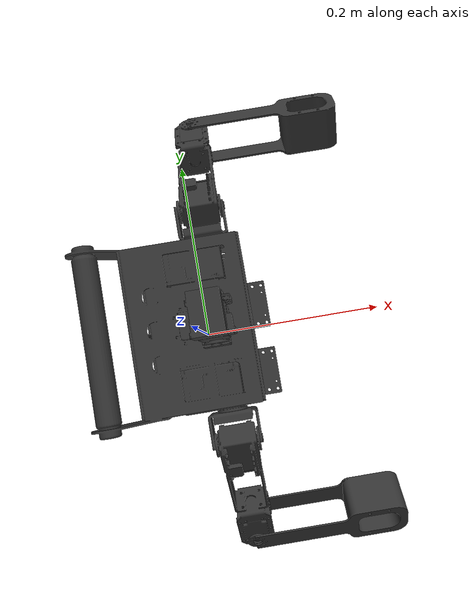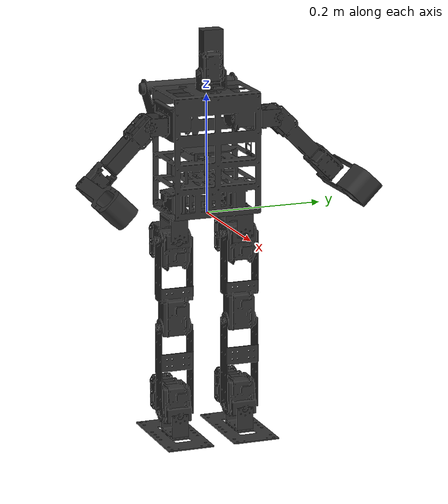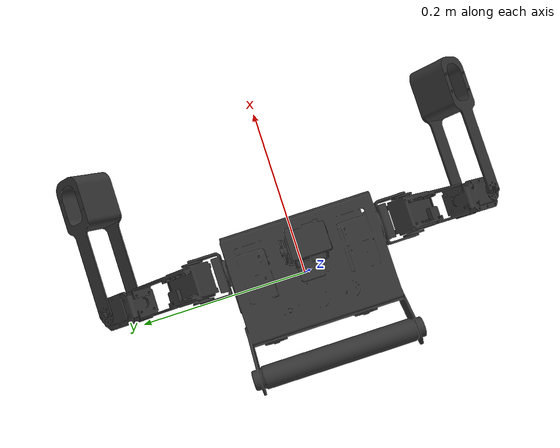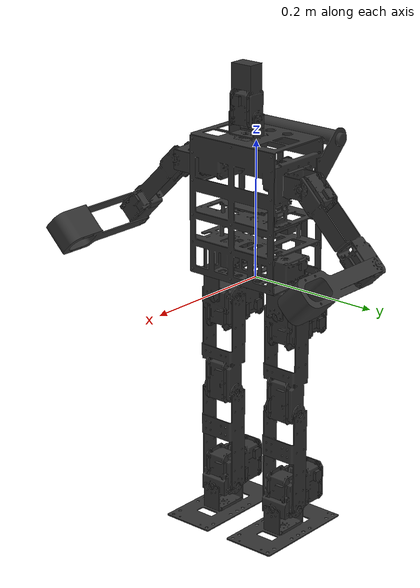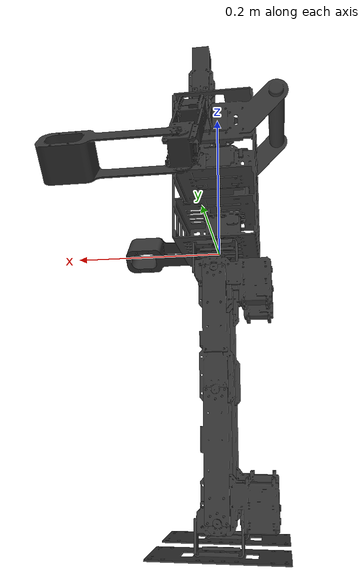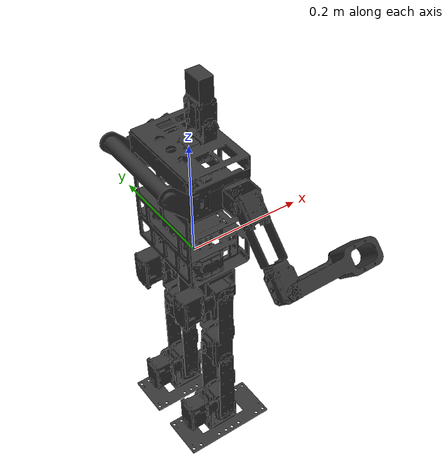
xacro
<?xml version="1.0" ?>
<robot name="Minibot" xmlns:xacro="http://www.ros.org/wiki/xacro">

<xacro:arg name="sim_ns" default="/" />
<xacro:property name="tofa" value="1" /> <!--Torque factor-->
<xacro:property name="infa" value="1" /> <!--inertia factor-->
<xacro:property name="insu" value="0" /> <!--inertia summand-->
<xacro:property name="d" value="0.000001" /> <!-- damping -->
<xacro:property name="f" value="0" /> <!-- friction -->
<xacro:property name="pos_or_eff" value="1" /> <!-- position (0) or effort(1) joint interfaces -->

  <link name="base_link">
  </link>

  <link name="torso">
    <inertial>
      <origin xyz="-0.025019 0.000832 -0.054364" rpy=" 1.5707963268 0 1.5707963268"/>
      <mass value="1.423"/>
      <inertia ixx="${insu*10+infa* 0.009125471}"  ixy="0.0"  ixz="0" iyy="${insu*10+infa*0.005276569}" iyz="0.0" izz="${insu*10+infa*0.010426914}" />
    </inertial>
    <visual>
      <origin xyz="0 0 0" rpy="1.5707963268 0 1.5707963268"/>
      <geometry>
        <mesh filename="package://minibot_description/meshes/torso_low.dae"  scale="1 1 1"/>
      </geometry>
      <material name="Grey">
        <color rgba="0.20 0.20 0.20 1.0"/>
      </material>
    </visual>
    <collision>
      <origin xyz="0 0 0" rpy="1.5707963268 0 1.5707963268"/>
      <geometry>
        <mesh filename="package://minibot_description/meshes/torso_coll.dae"  scale="1 1 1"/>
      </geometry>
    </collision>
  </link>

  <link name="neck">
    <inertial>
      <origin xyz="0.000002 -0.001022 0.008994"/>
            <mass value="0.1"/>
      <inertia ixx="${insu*0.1+infa*0.000001769}"  ixy="0.0"  ixz="0" iyy="${insu*0.1+infa*0.000004625}" iyz="0.0" izz="${insu*0.1+infa*0.000005125}" />
    </inertial>
    <visual>
      <origin xyz="0 0 0" rpy="1.5707963268 0 0" />
      <geometry>
        <mesh filename="package://minibot_description/meshes/head_lower_high.stl"  scale="1 1 1"/>
      </geometry>
      <material name="Grey">
        <color rgba="0.20 0.20 0.20 1.0"/>
      </material>
    </visual>
    <collision>
      <origin xyz="0 0 0" rpy="1.5707963268 0 0" />
      <geometry>
        <mesh filename="package://minibot_description/meshes/head_lower_coll.dae"  scale="1 1 1"/>
      </geometry>
    </collision>
  </link>

  <link name="head">
    <inertial>
      <origin xyz="-0.000223 -0.028433 0.0" rpy="0 1.5707963268 0"/>
      <mass value="0.1"/>
      <inertia ixx="${insu*0.1+infa*0.000097954}"  ixy="0"  ixz="0" iyy="${insu*0.1+infa*0.000025415}" iyz="0" izz="${insu*0.1+infa*0.000107764}" />
    </inertial>
    <visual>
      <origin xyz="0 0 0" rpy="3.14 1.5707963268 0" />
      <geometry>
        <mesh filename="package://minibot_description/meshes/head_upper_high.stl"  scale="1 1 1"/>
      </geometry>
      <material name="Grey">
        <color rgba="0.20 0.20 0.20 1.0"/>
      </material>
    </visual>
    <collision>
      <origin xyz="0 0 0" rpy="3.14 1.5707963268 0" />
      <geometry>
        <mesh filename="package://minibot_description/meshes/head_upper_coll.dae"  scale="1 1 1"/>
      </geometry>
    </collision>
  </link>

  <link name="l_shoulder">
    <inertial>
      <origin xyz="0.0 0.0 0.0087"/>
      <mass value="0.018"/>
      <inertia ixx="${insu*0.1+infa*0.000006948}"  ixy="0"  ixz="0" iyy="${insu*0.1+infa*0.000007574}" iyz="0" izz="${insu*0.1+infa*0.000003585}" />
    </inertial>
    <visual>
      <origin xyz="0 0 0" rpy="0 1.5707963268 1.5707963268"/>
      <geometry>
        <!--box size="0.016 0.033 0.02165" /-->
        <mesh filename="package://minibot_description/meshes/shoulder_con_high.stl"  scale="1 1 1"/>
      </geometry>
      <material name="Grey">
        <color rgba="0.20 0.20 0.20 1.0"/>
      </material>
    </visual>
    <collision>
      <origin xyz="0 0 0" rpy="0 1.5707963268 1.5707963268"/>
      <geometry>
        <mesh filename="package://minibot_description/meshes/shoulder_con_coll.dae"  scale="1 1 1"/>
      </geometry>
    </collision>
  </link>

  <link name="l_upper_arm" >
    <inertial>
      <origin xyz="-0.071053 0.000432 0.000046"/>
      <mass value="0.190"/>
      <inertia ixx="${insu+infa*0.0000409}"  ixy="0"  ixz="0" iyy="${insu+infa*0.000667366}" iyz="0" izz="${insu+infa*0.000664711}" />
    </inertial>
    <visual>
      <origin xyz="0 0 0" rpy="0 0 -1.5707963268" />
      <geometry>
        <mesh filename="package://minibot_description/meshes/upper_arm_high.dae"  scale="1 1 1"/>
      </geometry>
      <material name="Grey">
        <color rgba="0.20 0.20 0.20 1.0"/>
      </material>
    </visual>
   <collision>
      <origin xyz="0 0 0" rpy="0 0 -1.5707963268" />
      <geometry>
        <mesh filename="package://minibot_description/meshes/upper_arm_coll.dae"  scale="1 1 1"/>
      </geometry>
    </collision>
  </link>

  <link name="l_lower_arm" >
    <inertial>
      <origin xyz="-0.108 0.0 0.0" rpy="0 0 -3.141"/>
      <mass value="0.097"/>
      <inertia ixx="${insu*0.1+infa*0.00004315}"  ixy="0"  ixz="0" iyy="${insu*0.1+infa*0.000170889}" iyz="0" izz="${insu*0.1+infa*0.000179088}" />
    </inertial>

    <visual>
      <origin xyz="0 0 0" rpy="0 1.5707963268 -1.5707963268" />
      <geometry>
        <mesh filename="package://minibot_description/meshes/lower_arm_high.stl"  scale="1 1 1"/>
      </geometry>
      <material name="Grey">
        <color rgba="0.20 0.20 0.20 1.0"/>
      </material>
    </visual>
    <collision>
      <origin xyz="0 0 0" rpy="0 1.5707963268 -1.5707963268" />
      <geometry>
        <mesh filename="package://minibot_description/meshes/lower_arm_coll.dae"  scale="1 1 1"/>
      </geometry>
    </collision>
  </link>

  <link name="r_shoulder" >
    <inertial>
      <origin xyz="0.0 0.0 0.0087"/>
      <mass value="0.018"/>
      <inertia ixx="${insu*0.1+infa*0.000006948}"  ixy="0"  ixz="0" iyy="${insu*0.1+infa*0.000007574}" iyz="0" izz="${insu*0.1+infa*0.000003585}" />
    </inertial>
    <visual>
      <origin xyz="0 0 0" rpy="0 1.5707963268 1.5707963268"/>
      <geometry>
        <!--box size="0.016 0.033 0.02165" /-->
        <mesh filename="package://minibot_description/meshes/shoulder_con_high.stl"  scale="1 1 1"/>
      </geometry>
      <material name="Grey">
        <color rgba="0.20 0.20 0.20 1.0"/>
      </material>
    </visual>
    <collision>
      <origin xyz="0 0 0" rpy="0 1.5707963268 1.5707963268"/>
      <geometry>
        <mesh filename="package://minibot_description/meshes/shoulder_con_coll.dae"  scale="1 1 1"/>
      </geometry>
    </collision>
  </link>

  <link name="r_upper_arm" >
    <inertial>
      <origin xyz="-0.071053 0.000432 0.000046"/>
      <mass value="0.190"/>
      <inertia ixx="${insu*0.1+infa*0.0000409}"  ixy="0"  ixz="0" iyy="${insu*0.1+infa*0.000667366}" iyz="0" izz="${insu*0.1+infa*0.000664711}" />
    </inertial>
    <visual>
      <origin xyz="0 0 0" rpy="0 0 -1.5707963268" />
      <geometry>
        <!--box size="0.06 0.032 0.035"/-->
        <mesh filename="package://minibot_description/meshes/upper_arm_high.dae"  scale="1 1 1"/>
      </geometry>
      <material name="Grey">
        <color rgba="0.20 0.20 0.20 1.0"/>
      </material>
    </visual>
    <collision>
      <origin xyz="0 0 0" rpy="0 0 -1.5707963268" />
      <geometry>
        <mesh filename="package://minibot_description/meshes/upper_arm_coll.dae"  scale="1 1 1"/>
      </geometry>
    </collision>
  </link>

  <link name="r_lower_arm" >
    <inertial>
      <origin xyz="0.108 0.0 0.0"/>
      <mass value="0.097"/>
      <inertia ixx="${insu*0.1+infa*0.00004315}"  ixy="0"  ixz="0" iyy="${insu*0.1+infa*0.000170889}" iyz="0" izz="${insu*0.1+infa*0.000179088}" />
    </inertial>

    <visual>
      <origin xyz="0 0 0" rpy="0 1.5707963268 1.5707963268" />
      <geometry>
        <mesh filename="package://minibot_description/meshes/lower_arm_high.stl"  scale="1 1 1"/>
      </geometry>
      <material name="Grey">
        <color rgba="0.20 0.20 0.20 1.0"/>
      </material>
    </visual>
    <collision>
      <origin xyz="0 0 0" rpy="0 1.5707963268 1.5707963268" />
      <geometry>
        <mesh filename="package://minibot_description/meshes/lower_arm_coll.dae"  scale="1 1 1"/>
      </geometry>
    </collision>
  </link>

  <link name="l_hip_1" >
    <inertial>
      <origin xyz="0.0 0.0 0.011" rpy="1.5707963268 0 1.5707963268"/>
      <mass value="0.022"/>
      <inertia ixx="${insu*0.1+infa*0.000014143}"  ixy="0"  ixz="0" iyy="${insu*0.1+infa*0.000013017}" iyz="0" izz="${insu*0.1+infa*0.0000052}" />
    </inertial>
    <visual>
      <origin xyz="0 0 0" rpy="1.5707963268 0 0" />
      <geometry>
        <!--box size="0.045 0.08175 0.028652" /-->
        <mesh filename="package://minibot_description/meshes/yaw_con_high.stl"  scale="1 1 1"/>
      </geometry>
      <material name="Grey">
        <color rgba="0.20 0.20 0.20 1.0"/>
      </material>
    </visual>
    <collision>
      <origin xyz="0 0 0" rpy="1.5707963268 0 0" />
      <geometry>
        <mesh filename="package://minibot_description/meshes/yaw_con_coll.dae"  scale="1 1 1"/>
      </geometry>
    </collision>
  </link>

  <link name="l_hip_2" >
    <inertial>
      <origin xyz="-0.00057 -0.013721 0.02013 "/>
      <mass value="0.325"/>
      <inertia ixx="${insu+infa*0.000315619}"  ixy="0"  ixz="0" iyy="${insu+infa*0.000280296}" iyz="0" izz="${insu+infa*0.0001431}" />
    </inertial>
    <visual>
      <origin xyz="0 0 0" rpy="0 3.14 0" />
      <geometry>
        <!--box size="0.001 0.001 0.001"/-->
        <mesh filename="package://minibot_description/meshes/hip_roll_low.dae"  scale="1 1 1"/>
      </geometry>
      <material name="Grey">
        <color rgba="0.20 0.20 0.20 1.0"/>
      </material>
    </visual>
    <collision>
      <origin xyz="0 0 0" rpy="0 3.14 0" />
      <geometry>
        <mesh filename="package://minibot_description/meshes/hip_roll_coll.dae"  scale="1 1 1"/>
      </geometry>
    </collision>
  </link>

  <link name="l_upper_leg" >
    <inertial>
      <origin xyz="-0.12799 -0.000699 0.000454" rpy="0 1.5707963268 1.5707963268"/>
      <mass value="0.215"/>
      <inertia ixx="${insu+infa*0.000295153}"  ixy="0"  ixz="0" iyy="${insu+infa*0.000085463}" iyz="0" izz="${insu+infa*0.000344449}" />
    </inertial>
    <visual>
      <origin xyz="0 0 0" rpy="1.5707963268 1.5707963268 0" />
      <geometry>
        <!--box size="0.093 0.035 0.045"-->
        <mesh filename="package://minibot_description/meshes/upper_leg_high.stl"  scale="1 1 1"/>
      </geometry>
      <material name="Grey">
        <color rgba="0.20 0.20 0.20 1.0"/>
      </material>
    </visual>
    <collision>
      <origin xyz="0 0 0" rpy="1.5707963268 1.5707963268 0" />
      <geometry>
        <mesh filename="package://minibot_description/meshes/upper_leg_coll.dae"  scale="1 1 1"/>
      </geometry>
    </collision>
  </link>

  <link name="l_lower_leg" >
    <inertial>
      <origin xyz="-0.072079 -0.00295 0.0" rpy="0 1.5707963268 1.5707963268"/>
      <mass value="0.055"/>
      <inertia ixx="${insu*0.1+infa*0.000094062}"  ixy="0"  ixz="0" iyy="${insu*0.1+infa*0.000043139}" iyz="0" izz="${insu*0.1+infa*0.000125827}" />
    </inertial>
    <visual>
      <origin xyz="0 0 0" rpy="1.5707963268 1.5707963268 0" />
      <geometry>
        <!--box size="0.093 0.035 0.045"/-->
        <mesh filename="package://minibot_description/meshes/lower_leg_high.stl"  scale="1 1 1"/>
      </geometry>
      <material name="Grey">
        <color rgba="0.20 0.20 0.20 1.0"/>
      </material>
    </visual>
    <collision>
      <origin xyz="0 0 0" rpy="1.5707963268 1.5707963268 0" />
      <geometry>
        <mesh filename="package://minibot_description/meshes/lower_leg_coll.dae"  scale="1 1 1"/>
      </geometry>
    </collision>
  </link>

  <link name="l_ankle" >
    <inertial>
      <origin xyz="0.014045 -0.020134 -0.000053" rpy="1.5707963268 1.5707963268 0"/>
      <mass value="0.325"/>
      <inertia ixx="${insu+infa*0.000315619}"  ixy="0"  ixz="0" iyy="${insu+infa*0.000280296}" iyz="0" izz="${insu+infa*0.0001431}" />
    </inertial>
    <visual>
      <origin xyz="0 0 0" rpy="3.14 -1.5707963268 1.5707963268" />
      <geometry>
        <!--box size="0.028652 0.08175 0.045"/-->
        <mesh filename="package://minibot_description/meshes/ankle_roll_low.dae"  scale="1 1 1"/>
      </geometry>
      <material name="Grey">
        <color rgba="0.20 0.20 0.20 1.0"/>
      </material>
    </visual>
    <collision>
      <origin xyz="0 0 0" rpy="3.14 -1.5707963268 1.5707963268" />
      <geometry>
        <mesh filename="package://minibot_description/meshes/ankle_roll_coll.dae"  scale="1 1 1"/>
      </geometry>
    </collision>
  </link>

  <link name="l_foot" >
    <inertial>
      <origin xyz="-0.0364 0.0003 0.002423" rpy="0 0 1.5707963268"/>
      <mass value="0.086"/>
      <inertia ixx="${insu*0.1+infa*0.000165687}"  ixy="0"  ixz="0" iyy="${insu*0.1+infa*0.000197792}" iyz="0" izz="${insu*0.1+infa*0.00004318}" />
    </inertial>
    <visual>
      <origin xyz="0 0 0" rpy="0 0 -1.5707963268" />
      <geometry>
        <!--box size="0.008 0.066 0.104"/-->
        <mesh filename="package://minibot_description/meshes/foot_high.stl"  scale="1 1 1"/>
      </geometry>
      <material name="Grey">
        <color rgba="0.20 0.20 0.20 1.0"/>
      </material>
    </visual>
    <collision>
      <origin xyz="0 0 0" rpy="0 0 -1.5707963268" />
      <geometry>
        <mesh filename="package://minibot_description/meshes/foot_coll.dae"  scale="1 1 1"/>
      </geometry>
    </collision>
  </link>

  <link name="r_hip_1" >
    <inertial>
      <origin xyz="0.0 0.0 0.011" rpy="1.5707963268 0 1.5707963268"/>
      <mass value="0.022"/>
      <inertia ixx="${insu*0.1+infa*0.000014143}"  ixy="0"  ixz="0" iyy="${insu*0.1+infa*0.000013017}" iyz="0" izz="${insu*0.1+infa*0.0000052}" />
    </inertial>
    <visual>
      <origin xyz="0 0 0" rpy="1.5707963268 0 0" />
      <geometry>
        <!--box size="0.045 0.08175 0.028652" /-->
        <mesh filename="package://minibot_description/meshes/yaw_con_high.stl"  scale="1 1 1"/>
      </geometry>
      <material name="Grey">
        <color rgba="0.20 0.20 0.20 1.0"/>
      </material>
    </visual>
    <collision>
      <origin xyz="0 0 0" rpy="1.5707963268 0 0" />
      <geometry>
        <mesh filename="package://minibot_description/meshes/yaw_con_coll.dae"  scale="1 1 1"/>
      </geometry>
    </collision>
  </link>

  <link name="r_hip_2" >
    <inertial>
      <origin xyz="-0.00057 -0.013721 0.02013 "/>
      <mass value="0.325"/>
      <inertia ixx="${insu+infa*0.000315619}"  ixy="0"  ixz="0" iyy="${insu+infa*0.000280296}" iyz="0" izz="${insu+infa*0.0001431}" />
    </inertial>
    <visual>
      <origin xyz="0 0 0" rpy="0 3.14 0" />
      <geometry>
        <!--box size="0.001 0.001 0.001"/-->
        <mesh filename="package://minibot_description/meshes/hip_roll_low.dae"  scale="1 1 1"/>
      </geometry>
      <material name="Grey">
        <color rgba="0.20 0.20 0.20 1.0"/>
      </material>
    </visual>
    <collision>
      <origin xyz="0 0 0" rpy="0 3.14 0" />
      <geometry>
        <mesh filename="package://minibot_description/meshes/hip_roll_coll.dae"  scale="1 1 1"/>
      </geometry>
    </collision>

  </link>

  <link name="r_upper_leg" >
    <inertial>
      <origin xyz="0.12799 -0.000699 0.000454" rpy="0 1.5707963268 1.5707963268"/>
      <mass value="0.215"/>
      <inertia ixx="${insu+infa*0.000295153}"  ixy="0"  ixz="0" iyy="${insu+infa*0.000085463}" iyz="0" izz="${insu+infa*0.000344449}" />
    </inertial>
    <visual>
      <origin xyz="0 0 0" rpy="1.5707963268 -1.5707963268 0" />
      <geometry>
        <!--box size="0.093 0.035 0.045"/-->
        <mesh filename="package://minibot_description/meshes/upper_leg_high.stl"  scale="1 1 1"/>
      </geometry>
      <material name="Grey">
        <color rgba="0.20 0.20 0.20 1.0"/>
      </material>
    </visual>
    <collision>
      <origin xyz="0 0 0" rpy="1.5707963268 -1.5707963268 0" />
      <geometry>
        <mesh filename="package://minibot_description/meshes/upper_leg_coll.dae"  scale="1 1 1"/>
      </geometry>
    </collision>

  </link>

  <link name="r_lower_leg" >
    <inertial>
      <origin xyz="0.072079 -0.00295 0.0" rpy="0 1.5707963268 1.5707963268"/>
      <mass value="0.055"/>
      <inertia ixx="${insu*0.1+infa*0.000094062}"  ixy="0"  ixz="0" iyy="${insu*0.1+infa*0.000043139}" iyz="0" izz="${insu*0.1+infa*0.000125827}" />
    </inertial>
    <visual>
      <origin xyz="0 0 0" rpy="1.5707963268 -1.5707963268 0" />
      <geometry>
        <!--box size="0.093 0.035 0.045"/-->
        <mesh filename="package://minibot_description/meshes/lower_leg_high.stl"  scale="1 1 1"/>
      </geometry>
      <material name="Grey">
        <color rgba="0.20 0.20 0.20 1.0"/>
      </material>
    </visual>
    <collision>
      <origin xyz="0 0 0" rpy="1.5707963268 -1.5707963268 0" />
      <geometry>
        <mesh filename="package://minibot_description/meshes/lower_leg_coll.dae"  scale="1 1 1"/>
      </geometry>
    </collision>

  </link>

  <link name="r_ankle" >
    <inertial>
      <origin xyz="-0.014045 -0.020134 -0.000053" rpy="1.5707963268 1.5707963268 0"/>
      <mass value="0.325"/>
      <inertia ixx="${insu+infa*0.000315619}"  ixy="0"  ixz="0" iyy="${insu+infa*0.000280296}" iyz="0" izz="${insu+infa*0.0001431}" />
    </inertial>
    <visual>
      <origin xyz="0 0 0" rpy="0 1.5707963268 1.5707963268" />
      <geometry>
        <!--box size="0.028652 0.08175 0.045"/-->
        <mesh filename="package://minibot_description/meshes/ankle_roll_low.dae"  scale="1 1 1"/>
      </geometry>
      <material name="Grey">
        <color rgba="0.20 0.20 0.20 1.0"/>
      </material>
    </visual>
    <collision>
      <origin xyz="0 0 0" rpy="0 1.5707963268 1.5707963268" />
      <geometry>
        <mesh filename="package://minibot_description/meshes/ankle_roll_coll.dae"  scale="1 1 1"/>
      </geometry>
    </collision>

  </link>

  <link name="r_foot" >
    <inertial>
      <origin xyz="0.0364 0.0003 0.002423" rpy="0 0 1.5707963268"/>
      <mass value="0.086"/>
      <inertia ixx="${insu*0.1+infa*0.000165687}"  ixy="0"  ixz="0" iyy="${insu*0.1+infa*0.000197792}" iyz="0" izz="${insu*0.1+infa*0.00004318}" />
    </inertial>
    <visual>
      <origin xyz="0 0 0" rpy="0 0 1.5707963268" />
      <geometry>
        <!--box size="0.008 0.066 0.104"/-->
        <mesh filename="package://minibot_description/meshes/foot_high.stl"  scale="1 1 1"/>
      </geometry>
      <material name="Grey">
        <color rgba="0.20 0.20 0.20 1.0"/>
      </material>
    </visual>
    <collision>
      <origin xyz="0 0 0" rpy="0 0 1.5707963268" />
      <geometry>
        <mesh filename="package://minibot_description/meshes/foot_coll.dae"  scale="1 1 1"/>
      </geometry>
    </collision>
  </link>

  <link name="camera" />
  <link name="l_wrist" />
  <link name="r_wrist" />
  <link name="l_sole" />
  <link name="r_sole" />
  <link name="l_toe" />
  <link name="r_toe" />

  <link name="imu">
  </link>
  <link name="camera_fixed">
  </link>

  <joint name="torso_to_imu" type="fixed">
  <parent link="torso"/>
  <child link="imu"/>
  <origin xyz="-0.03 0 -0.05" rpy="0 0 0" />
  <axis xyz="0 0 1" />
  </joint>

  <joint name="base_to_torso" type="fixed">
  <parent link="base_link"/>
  <child link="torso"/>
  <origin xyz="0.022 0 0.160593" rpy="0 0 0" />
  <axis xyz="0 0 1" />
  </joint>

  <joint name="torso_to_camera_fixed" type="fixed">
  <parent link="torso"/>
  <child link="camera_fixed"/>
  <origin xyz="0.0 0 0.133" rpy="0 0 0" />
  <axis xyz="0 0 1" />
  </joint>

  <joint name="head_to_camera" type="fixed">
  <parent link="head"/>
  <child link="camera"/>
  <origin xyz="0 -0.055 0 " rpy="-1.5707963 0 3.14159" />
  <axis xyz="0 0 1" />
  </joint>

  <joint name="HeadTilt" type="revolute">
    <parent link="neck"/>
    <child link="head"/>
    <origin xyz="0 0 0.02715" rpy="-1.5707963 0 1.5707963" />
    <axis xyz="0 0 1" />
    <limit effort="${tofa*2.5}" velocity="5.6548668" lower="-1.5707963267910001" upper="0" />
  <dynamics damping="${d}" friction="0.0"/> </joint>

  <joint name="HeadPan" type="revolute">
    <parent link="torso"/>
    <child link="neck"/>
    <origin xyz="0 0 0.050593" rpy="0 0 1.5707963" />
    <axis xyz="0 0 1" />
    <limit effort="${tofa*2.5}" velocity="5.6548668" lower="-2.1816615649875" upper="2.1816615649875" />
  <dynamics damping="${d}" friction="0.0"/> </joint>

  <joint name="LShoulderPitch" type="revolute">
    <parent link="torso"/>
    <child link="l_shoulder"/>
    <origin xyz="0 0.08134 0" rpy="0 -1.5707963 -1.5707963" />
    <axis xyz="0 0 1" />
    <limit effort="${tofa*6.0}" velocity="6.597344565" lower="-3.1415926535820002" upper="3.1415926535820002" />
  <dynamics damping="${d}" friction="0.0"/> </joint>

  <joint name="LShoulderRoll" type="revolute">
    <parent link="l_shoulder"/>
    <child link="l_upper_arm"/>
    <origin xyz="0 0 0.029194" rpy="-1.5707963 0.7853981633955001 0" />
    <axis xyz="0 0 -1" />
    <limit effort="${tofa*2.5}" velocity="5.648668" lower="-2.3561944901865" upper="0.7853981633955001" />
  <dynamics damping="${d}" friction="0.0"/> </joint>

  <joint name="LElbow" type="revolute">
    <parent link="l_upper_arm"/>
    <child link="l_lower_arm"/>
    <origin xyz="-0.14 0 0" rpy="1.5707963 1.5707963 0" />
    <axis xyz="0 0 1" />
    <limit effort="${tofa*2.5}" velocity="5.6548668" lower="-1.1344640137935" upper="1.5707963267910001" />
  <dynamics damping="${d}" friction="0.0"/> </joint>

  <joint name="l_elbow_to_hand" type="fixed">
   <parent link="l_lower_arm"/>
   <child link="l_wrist" />
   <origin xyz="-0.1573 0 0" rpy="0 0 3.14159"/>
  </joint>

  <joint name="RShoulderPitch" type="revolute">
    <parent link="torso"/>
    <child link="r_shoulder"/>
    <origin xyz="0 -0.08134 0" rpy="0 1.5707963 -1.5707963" />
    <axis xyz="0 0 1" />
    <limit effort="${tofa*6.0}" velocity="6.597344565" lower="-3.1415926535820002" upper="3.1415926535820002" />
  <dynamics damping="${d}" friction="0.0"/> </joint>

  <joint name="RShoulderRoll" type="revolute">
    <parent link="r_shoulder"/>
    <child link="r_upper_arm"/>
    <origin xyz="0 0 0.029194" rpy="-1.5707963 2.356194463 0" />
    <axis xyz="0 0 -1" />
    <limit effort="${tofa*2.5}" velocity="5.648668" lower="-0.7853981633955001" upper="2.3561944901865" />
  <dynamics damping="${d}" friction="0.0"/> </joint>

  <joint name="RElbow" type="revolute">
    <parent link="r_upper_arm"/>
    <child link="r_lower_arm"/>
    <origin xyz="-0.14 0 0" rpy="-1.5707963 -1.5707963 0" />
    <axis xyz="0 0 1" />
    <limit effort="${tofa*2.5}" velocity="5.6548668" lower="-1.635" upper="1.5707963267910001" />
  <dynamics damping="${d}" friction="0.0"/> </joint>

  <joint name="r_elbow_to_hand" type="fixed">
   <parent link="r_lower_arm"/>
   <child link="r_wrist" />
   <origin xyz="0.1573 0 0"/>
  </joint>

  <joint name="LHipYaw" type="revolute">
    <parent link="base_link"/>
    <child link="l_hip_1"/>
    <origin xyz="0 0.057775 0" rpy="0 3.14159 3.14159" />
    <axis xyz="0 0 1" />
    <limit effort="${tofa*2.5}" velocity="5.6548668" lower="-0.9250245035547" upper="0.9250245035547" />
  <dynamics damping="${d}" friction="0.0"/> </joint>

  <joint name="LHipRoll" type="revolute">
    <parent link="l_hip_1"/>
    <child link="l_hip_2"/>
    <origin xyz="0 0 0.038444" rpy="-1.5707963 0 1.5707963" />
    <axis xyz="0 0 1" />
    <limit effort="${tofa*6.0}" velocity="6.597344565" lower="-1.0122909661542001" upper="0.7853981633955001" />
  <dynamics damping="${d}" friction="0.0"/> </joint>

  <joint name="LHipPitch" type="revolute">
    <parent link="l_hip_2"/>
    <child link="l_upper_leg"/>
    <origin xyz="0 0 0" rpy="1.5707963 0 1.5707963" />
    <axis xyz="0 0 1" />
    <limit effort="${tofa*8.4}" velocity="4.712388975" lower="-0.48869219055720003" upper="1.919862177189" />
  <dynamics damping="${d}" friction="0.0"/> </joint>

  <joint name="LKnee" type="revolute">
    <parent link="l_upper_leg"/>
    <child link="l_lower_leg"/>
    <origin xyz="-0.150 0 0" rpy="0 0 0" />
    <axis xyz="0 0 1" />
    <limit effort="${tofa*8.4}" velocity="4.712388975" lower="-2.268928027587" upper="0" />
  <dynamics damping="${d}" friction="0.0"/> </joint>

  <joint name="LAnklePitch" type="revolute">
    <parent link="l_lower_leg"/>
    <child link="l_ankle"/>
    <origin xyz="-0.150 0 0" rpy="3.14159 0 0" />
    <axis xyz="0 0 1" />
    <limit effort="${tofa*8.4}" velocity="4.712388975" lower="-1.6406094968706" upper="1.2391837689129" />
  <dynamics damping="${d}" friction="0.0"/> </joint>

  <joint name="LAnkleRoll" type="revolute">
    <parent link="l_ankle"/>
    <child link="l_foot"/>
    <origin xyz="0 0 0" rpy="-1.5707963 0 0" />
    <axis xyz="0 0 1" />
    <limit effort="${tofa*6.0}" velocity="6.597344565" lower="-1.4660765716716" upper="1.4660765716716" />
  <dynamics damping="${d}" friction="0.0"/> </joint>

  <joint name="l_foot_to_sole" type="fixed">
   <parent link="l_foot"/>
   <child link="l_sole" />
   <origin xyz="-0.040444 0 0" rpy="3.14159 -1.5707963 0"/>
  </joint>

  <joint name="l_sole_to_toe" type="fixed">
   <parent link="l_sole"/>
   <child link="l_toe" />
   <origin xyz="0.0849 0 0 "/>
  </joint>

  <joint name="RHipYaw" type="revolute">
    <parent link="base_link"/>
    <child link="r_hip_1"/>
    <origin xyz="0 -0.057775 0" rpy="0 3.14159 3.14159" />
    <axis xyz="0 0 1" />
    <limit effort="${tofa*2.5}" velocity="5.6548668" lower="-0.9250245035547" upper="0.9250245035547" />
  <dynamics damping="${d}" friction="0.0"/> </joint>

  <joint name="RHipRoll" type="revolute">
    <parent link="r_hip_1"/>
    <child link="r_hip_2"/>
    <origin xyz="0 0 0.038444" rpy="-1.5707963 0 1.5707963" />
    <axis xyz="0 0 1" />
    <limit effort="${tofa*6.0}" velocity="6.597344565" lower="-1.0122909661542001" upper="0.7853981633955001" />
  <dynamics damping="${d}" friction="0.0"/> </joint>

  <joint name="RHipPitch" type="revolute">
    <parent link="r_hip_2"/>
    <child link="r_upper_leg"/>
    <origin xyz="0 0 0" rpy="1.5707963 0 -1.5707963" />
    <axis xyz="0 0 1" />
    <limit effort="${tofa*8.4}" velocity="4.712388975" lower="-1.919862177189" upper="0.48869219055720003" />
  <dynamics damping="${d}" friction="0.0"/> </joint>

  <joint name="RKnee" type="revolute">
    <parent link="r_upper_leg"/>
    <child link="r_lower_leg"/>
    <origin xyz="0.150 0 0" rpy="0 0 0" />
    <axis xyz="0 0 1" />
    <limit effort="${tofa*8.4}" velocity="4.712388975" lower="0" upper="2.268928027587" />
  <dynamics damping="${d}" friction="0.0"/> </joint>

  <joint name="RAnklePitch" type="revolute">
    <parent link="r_lower_leg"/>
    <child link="r_ankle"/>
    <origin xyz="0.150 0 0" rpy="3.14159 0 0" />
    <axis xyz="0 0 1" />
    <limit effort="${tofa*8.4}" velocity="4.712388975" lower="-1.2391837689129" upper="1.6406094968706" />
  <dynamics damping="${d}" friction="0.0"/> </joint>

  <joint name="RAnkleRoll" type="revolute">
    <parent link="r_ankle"/>
    <child link="r_foot"/>
    <origin xyz="0 0 0" rpy="-1.5707963 0 0" />
    <axis xyz="0 0 1" />
    <limit effort="${tofa*6.0}" velocity="6.597344565" lower="-1.4660765716716" upper="1.4660765716716" />
  <dynamics damping="${d}" friction="0.0"/> </joint>

  <joint name="r_foot_to_sole" type="fixed">
   <parent link="r_foot"/>
   <child link="r_sole" />
   <origin xyz="0.040444 0 0" rpy="0 -1.5707963 0"/>
  </joint>

  <joint name="r_sole_to_toe" type="fixed">
   <parent link="r_sole"/>
   <child link="r_toe" />
   <origin xyz="0.0849 0 0 "/>
  </joint>

   <transmission name="HeadPanTransmission">
    <type>transmission_interface/SimpleTransmission</type>
    <joint name="HeadPan">
    <xacro:if value="${pos_or_eff == 0}">
        <hardwareInterface>hardware_interface/PositionJointInterface</hardwareInterface>
    </xacro:if>
    <xacro:if value="${pos_or_eff == 1}">
        <hardwareInterface>hardware_interface/EffortJointInterface</hardwareInterface>
    </xacro:if>
    </joint>
    <actuator name="HeadPanMotor">
        <xacro:if value="${pos_or_eff == 0}">
            <hardwareInterface>hardware_interface/PositionJointInterface</hardwareInterface>
        </xacro:if>
        <xacro:if value="${pos_or_eff == 1}">
            <hardwareInterface>hardware_interface/EffortJointInterface</hardwareInterface>
        </xacro:if>
        <mechanicalReduction>1</mechanicalReduction>
    </actuator>
  </transmission>

   <transmission name="HeadTiltTransmission">
    <type>transmission_interface/SimpleTransmission</type>
    <joint name="HeadTilt">
        <xacro:if value="${pos_or_eff == 0}">
            <hardwareInterface>hardware_interface/PositionJointInterface</hardwareInterface>
        </xacro:if>
        <xacro:if value="${pos_or_eff == 1}">
            <hardwareInterface>hardware_interface/EffortJointInterface</hardwareInterface>
        </xacro:if>
    </joint>
    <actuator name="HeadTiltMotor">
        <xacro:if value="${pos_or_eff == 0}">
            <hardwareInterface>hardware_interface/PositionJointInterface</hardwareInterface>
        </xacro:if>
        <xacro:if value="${pos_or_eff == 1}">
            <hardwareInterface>hardware_interface/EffortJointInterface</hardwareInterface>
        </xacro:if>
      <mechanicalReduction>1</mechanicalReduction>
    </actuator>
  </transmission>

   <transmission name="LShoulderPitchTransmission">
    <type>transmission_interface/SimpleTransmission</type>
    <joint name="LShoulderPitch">
        <xacro:if value="${pos_or_eff == 0}">
            <hardwareInterface>hardware_interface/PositionJointInterface</hardwareInterface>
        </xacro:if>
        <xacro:if value="${pos_or_eff == 1}">
            <hardwareInterface>hardware_interface/EffortJointInterface</hardwareInterface>
        </xacro:if>
    </joint>
    <actuator name="LShoulderPitchMotor">
        <xacro:if value="${pos_or_eff == 0}">
            <hardwareInterface>hardware_interface/PositionJointInterface</hardwareInterface>
        </xacro:if>
        <xacro:if value="${pos_or_eff == 1}">
            <hardwareInterface>hardware_interface/EffortJointInterface</hardwareInterface>
        </xacro:if>
      <mechanicalReduction>1</mechanicalReduction>
    </actuator>
  </transmission>

   <transmission name="LShoulderRollTransmission">
    <type>transmission_interface/SimpleTransmission</type>
    <joint name="LShoulderRoll">
        <xacro:if value="${pos_or_eff == 0}">
            <hardwareInterface>hardware_interface/PositionJointInterface</hardwareInterface>
        </xacro:if>
        <xacro:if value="${pos_or_eff == 1}">
            <hardwareInterface>hardware_interface/EffortJointInterface</hardwareInterface>
        </xacro:if>
    </joint>
    <actuator name="LShoulderRollTransmission">
        <xacro:if value="${pos_or_eff == 0}">
            <hardwareInterface>hardware_interface/PositionJointInterface</hardwareInterface>
        </xacro:if>
        <xacro:if value="${pos_or_eff == 1}">
            <hardwareInterface>hardware_interface/EffortJointInterface</hardwareInterface>
        </xacro:if>
      <mechanicalReduction>1</mechanicalReduction>
    </actuator>
  </transmission>

   <transmission name="LElbowTransmission">
    <type>transmission_interface/SimpleTransmission</type>
    <joint name="LElbow">
        <xacro:if value="${pos_or_eff == 0}">
            <hardwareInterface>hardware_interface/PositionJointInterface</hardwareInterface>
        </xacro:if>
        <xacro:if value="${pos_or_eff == 1}">
            <hardwareInterface>hardware_interface/EffortJointInterface</hardwareInterface>
        </xacro:if>
    </joint>
    <actuator name="LElbowMotor">
        <xacro:if value="${pos_or_eff == 0}">
            <hardwareInterface>hardware_interface/PositionJointInterface</hardwareInterface>
        </xacro:if>
        <xacro:if value="${pos_or_eff == 1}">
            <hardwareInterface>hardware_interface/EffortJointInterface</hardwareInterface>
        </xacro:if>
      <mechanicalReduction>1</mechanicalReduction>
    </actuator>
  </transmission>

   <transmission name="RShoulderPitchTransmission">
    <type>transmission_interface/SimpleTransmission</type>
    <joint name="RShoulderPitch">
        <xacro:if value="${pos_or_eff == 0}">
            <hardwareInterface>hardware_interface/PositionJointInterface</hardwareInterface>
        </xacro:if>
        <xacro:if value="${pos_or_eff == 1}">
            <hardwareInterface>hardware_interface/EffortJointInterface</hardwareInterface>
        </xacro:if>
    </joint>
    <actuator name="RShoulderPitchMotor">
        <xacro:if value="${pos_or_eff == 0}">
            <hardwareInterface>hardware_interface/PositionJointInterface</hardwareInterface>
        </xacro:if>
        <xacro:if value="${pos_or_eff == 1}">
            <hardwareInterface>hardware_interface/EffortJointInterface</hardwareInterface>
        </xacro:if>
      <mechanicalReduction>1</mechanicalReduction>
    </actuator>
  </transmission>

   <transmission name="RShoulderRollTransmission">
    <type>transmission_interface/SimpleTransmission</type>
    <joint name="RShoulderRoll">
        <xacro:if value="${pos_or_eff == 0}">
            <hardwareInterface>hardware_interface/PositionJointInterface</hardwareInterface>
        </xacro:if>
        <xacro:if value="${pos_or_eff == 1}">
            <hardwareInterface>hardware_interface/EffortJointInterface</hardwareInterface>
        </xacro:if>
    </joint>
    <actuator name="RShoulderRollMotor">
        <xacro:if value="${pos_or_eff == 0}">
            <hardwareInterface>hardware_interface/PositionJointInterface</hardwareInterface>
        </xacro:if>
        <xacro:if value="${pos_or_eff == 1}">
            <hardwareInterface>hardware_interface/EffortJointInterface</hardwareInterface>
        </xacro:if>
      <mechanicalReduction>1</mechanicalReduction>
    </actuator>
  </transmission>

   <transmission name="RElbowTransmission">
    <type>transmission_interface/SimpleTransmission</type>
    <joint name="RElbow">
        <xacro:if value="${pos_or_eff == 0}">
            <hardwareInterface>hardware_interface/PositionJointInterface</hardwareInterface>
        </xacro:if>
        <xacro:if value="${pos_or_eff == 1}">
            <hardwareInterface>hardware_interface/EffortJointInterface</hardwareInterface>
        </xacro:if>
    </joint>
    <actuator name="RElbowMotor">
        <xacro:if value="${pos_or_eff == 0}">
            <hardwareInterface>hardware_interface/PositionJointInterface</hardwareInterface>
        </xacro:if>
        <xacro:if value="${pos_or_eff == 1}">
            <hardwareInterface>hardware_interface/EffortJointInterface</hardwareInterface>
        </xacro:if>
      <mechanicalReduction>1</mechanicalReduction>
    </actuator>
  </transmission>

   <transmission name="LHipYawTransmission">
    <type>transmission_interface/SimpleTransmission</type>
    <joint name="LHipYaw">
        <xacro:if value="${pos_or_eff == 0}">
            <hardwareInterface>hardware_interface/PositionJointInterface</hardwareInterface>
        </xacro:if>
        <xacro:if value="${pos_or_eff == 1}">
            <hardwareInterface>hardware_interface/EffortJointInterface</hardwareInterface>
        </xacro:if>
    </joint>
    <actuator name="LHipYawMotor">
        <xacro:if value="${pos_or_eff == 0}">
            <hardwareInterface>hardware_interface/PositionJointInterface</hardwareInterface>
        </xacro:if>
        <xacro:if value="${pos_or_eff == 1}">
            <hardwareInterface>hardware_interface/EffortJointInterface</hardwareInterface>
        </xacro:if>
      <mechanicalReduction>1</mechanicalReduction>
    </actuator>
  </transmission>

   <transmission name="LHipRollTransmission">
    <type>transmission_interface/SimpleTransmission</type>
    <joint name="LHipRoll">
        <xacro:if value="${pos_or_eff == 0}">
            <hardwareInterface>hardware_interface/PositionJointInterface</hardwareInterface>
        </xacro:if>
        <xacro:if value="${pos_or_eff == 1}">
            <hardwareInterface>hardware_interface/EffortJointInterface</hardwareInterface>
        </xacro:if>
    </joint>
    <actuator name="LHipRollMotor">
        <xacro:if value="${pos_or_eff == 0}">
            <hardwareInterface>hardware_interface/PositionJointInterface</hardwareInterface>
        </xacro:if>
        <xacro:if value="${pos_or_eff == 1}">
            <hardwareInterface>hardware_interface/EffortJointInterface</hardwareInterface>
        </xacro:if>
      <mechanicalReduction>1</mechanicalReduction>
    </actuator>
  </transmission>

   <transmission name="LHipPitchTransmission">
    <type>transmission_interface/SimpleTransmission</type>
    <joint name="LHipPitch">
        <xacro:if value="${pos_or_eff == 0}">
            <hardwareInterface>hardware_interface/PositionJointInterface</hardwareInterface>
        </xacro:if>
        <xacro:if value="${pos_or_eff == 1}">
            <hardwareInterface>hardware_interface/EffortJointInterface</hardwareInterface>
        </xacro:if>
    </joint>
    <actuator name="LHipPitchMotor">
        <xacro:if value="${pos_or_eff == 0}">
            <hardwareInterface>hardware_interface/PositionJointInterface</hardwareInterface>
        </xacro:if>
        <xacro:if value="${pos_or_eff == 1}">
            <hardwareInterface>hardware_interface/EffortJointInterface</hardwareInterface>
        </xacro:if>
      <mechanicalReduction>1</mechanicalReduction>
    </actuator>
  </transmission>

   <transmission name="LKneeTransmission">
    <type>transmission_interface/SimpleTransmission</type>
    <joint name="LKnee">
        <xacro:if value="${pos_or_eff == 0}">
            <hardwareInterface>hardware_interface/PositionJointInterface</hardwareInterface>
        </xacro:if>
        <xacro:if value="${pos_or_eff == 1}">
            <hardwareInterface>hardware_interface/EffortJointInterface</hardwareInterface>
        </xacro:if>
    </joint>
    <actuator name="LKneeMotor">
        <xacro:if value="${pos_or_eff == 0}">
            <hardwareInterface>hardware_interface/PositionJointInterface</hardwareInterface>
        </xacro:if>
        <xacro:if value="${pos_or_eff == 1}">
            <hardwareInterface>hardware_interface/EffortJointInterface</hardwareInterface>
        </xacro:if>
      <mechanicalReduction>1</mechanicalReduction>
    </actuator>
  </transmission>

   <transmission name="LAnklePitchTransmission">
    <type>transmission_interface/SimpleTransmission</type>
    <joint name="LAnklePitch">
        <xacro:if value="${pos_or_eff == 0}">
            <hardwareInterface>hardware_interface/PositionJointInterface</hardwareInterface>
        </xacro:if>
        <xacro:if value="${pos_or_eff == 1}">
            <hardwareInterface>hardware_interface/EffortJointInterface</hardwareInterface>
        </xacro:if>
    </joint>
    <actuator name="LAnklePitchMotor">
        <xacro:if value="${pos_or_eff == 0}">
            <hardwareInterface>hardware_interface/PositionJointInterface</hardwareInterface>
        </xacro:if>
        <xacro:if value="${pos_or_eff == 1}">
            <hardwareInterface>hardware_interface/EffortJointInterface</hardwareInterface>
        </xacro:if>
      <mechanicalReduction>1</mechanicalReduction>
    </actuator>
  </transmission>

   <transmission name="LAnkleRollTransmission">
    <type>transmission_interface/SimpleTransmission</type>
    <joint name="LAnkleRoll">
        <xacro:if value="${pos_or_eff == 0}">
            <hardwareInterface>hardware_interface/PositionJointInterface</hardwareInterface>
        </xacro:if>
        <xacro:if value="${pos_or_eff == 1}">
            <hardwareInterface>hardware_interface/EffortJointInterface</hardwareInterface>
        </xacro:if>
    </joint>
    <actuator name="LAnkleRollMotor">
        <xacro:if value="${pos_or_eff == 0}">
            <hardwareInterface>hardware_interface/PositionJointInterface</hardwareInterface>
        </xacro:if>
        <xacro:if value="${pos_or_eff == 1}">
            <hardwareInterface>hardware_interface/EffortJointInterface</hardwareInterface>
        </xacro:if>
      <mechanicalReduction>1</mechanicalReduction>
    </actuator>
  </transmission>

   <transmission name="RHipYawTransmission">
    <type>transmission_interface/SimpleTransmission</type>
    <joint name="RHipYaw">
        <xacro:if value="${pos_or_eff == 0}">
            <hardwareInterface>hardware_interface/PositionJointInterface</hardwareInterface>
        </xacro:if>
        <xacro:if value="${pos_or_eff == 1}">
            <hardwareInterface>hardware_interface/EffortJointInterface</hardwareInterface>
        </xacro:if>
    </joint>
    <actuator name="RHipYawMotor">
        <xacro:if value="${pos_or_eff == 0}">
            <hardwareInterface>hardware_interface/PositionJointInterface</hardwareInterface>
        </xacro:if>
        <xacro:if value="${pos_or_eff == 1}">
            <hardwareInterface>hardware_interface/EffortJointInterface</hardwareInterface>
        </xacro:if>
      <mechanicalReduction>1</mechanicalReduction>
    </actuator>
  </transmission>

   <transmission name="RHipRollTransmission">
    <type>transmission_interface/SimpleTransmission</type>
    <joint name="RHipRoll">
        <xacro:if value="${pos_or_eff == 0}">
            <hardwareInterface>hardware_interface/PositionJointInterface</hardwareInterface>
        </xacro:if>
        <xacro:if value="${pos_or_eff == 1}">
            <hardwareInterface>hardware_interface/EffortJointInterface</hardwareInterface>
        </xacro:if>
    </joint>
    <actuator name="RHipRollMotor">
        <xacro:if value="${pos_or_eff == 0}">
            <hardwareInterface>hardware_interface/PositionJointInterface</hardwareInterface>
        </xacro:if>
        <xacro:if value="${pos_or_eff == 1}">
            <hardwareInterface>hardware_interface/EffortJointInterface</hardwareInterface>
        </xacro:if>
      <mechanicalReduction>1</mechanicalReduction>
    </actuator>
  </transmission>

   <transmission name="RHipPitchTransmission">
    <type>transmission_interface/SimpleTransmission</type>
    <joint name="RHipPitch">
        <xacro:if value="${pos_or_eff == 0}">
            <hardwareInterface>hardware_interface/PositionJointInterface</hardwareInterface>
        </xacro:if>
        <xacro:if value="${pos_or_eff == 1}">
            <hardwareInterface>hardware_interface/EffortJointInterface</hardwareInterface>
        </xacro:if>
    </joint>
    <actuator name="RHipPitchMotor">
        <xacro:if value="${pos_or_eff == 0}">
            <hardwareInterface>hardware_interface/PositionJointInterface</hardwareInterface>
        </xacro:if>
        <xacro:if value="${pos_or_eff == 1}">
            <hardwareInterface>hardware_interface/EffortJointInterface</hardwareInterface>
        </xacro:if>
      <mechanicalReduction>1</mechanicalReduction>
    </actuator>
  </transmission>

   <transmission name="RKneeTransmission">
    <type>transmission_interface/SimpleTransmission</type>
    <joint name="RKnee">
        <xacro:if value="${pos_or_eff == 0}">
            <hardwareInterface>hardware_interface/PositionJointInterface</hardwareInterface>
        </xacro:if>
        <xacro:if value="${pos_or_eff == 1}">
            <hardwareInterface>hardware_interface/EffortJointInterface</hardwareInterface>
        </xacro:if>
    </joint>
    <actuator name="RKneeMotor">
        <xacro:if value="${pos_or_eff == 0}">
            <hardwareInterface>hardware_interface/PositionJointInterface</hardwareInterface>
        </xacro:if>
        <xacro:if value="${pos_or_eff == 1}">
            <hardwareInterface>hardware_interface/EffortJointInterface</hardwareInterface>
        </xacro:if>
      <mechanicalReduction>1</mechanicalReduction>
    </actuator>
  </transmission>

   <transmission name="RAnklePitchTransmission">
    <type>transmission_interface/SimpleTransmission</type>
    <joint name="RAnklePitch">
        <xacro:if value="${pos_or_eff == 0}">
            <hardwareInterface>hardware_interface/PositionJointInterface</hardwareInterface>
        </xacro:if>
        <xacro:if value="${pos_or_eff == 1}">
            <hardwareInterface>hardware_interface/EffortJointInterface</hardwareInterface>
        </xacro:if>
    </joint>
    <actuator name="RAnklePitchMotor">
        <xacro:if value="${pos_or_eff == 0}">
            <hardwareInterface>hardware_interface/PositionJointInterface</hardwareInterface>
        </xacro:if>
        <xacro:if value="${pos_or_eff == 1}">
            <hardwareInterface>hardware_interface/EffortJointInterface</hardwareInterface>
        </xacro:if>
      <mechanicalReduction>1</mechanicalReduction>
    </actuator>
  </transmission>

   <transmission name="RAnkleRollTransmission">
    <type>transmission_interface/SimpleTransmission</type>
    <joint name="RAnkleRoll">
        <xacro:if value="${pos_or_eff == 0}">
            <hardwareInterface>hardware_interface/PositionJointInterface</hardwareInterface>
        </xacro:if>
        <xacro:if value="${pos_or_eff == 1}">
            <hardwareInterface>hardware_interface/EffortJointInterface</hardwareInterface>
        </xacro:if>
    </joint>
    <actuator name="RAnkleRollMotor">
        <xacro:if value="${pos_or_eff == 0}">
            <hardwareInterface>hardware_interface/PositionJointInterface</hardwareInterface>
        </xacro:if>
        <xacro:if value="${pos_or_eff == 1}">
            <hardwareInterface>hardware_interface/hardware_interface/EffortJointInterface</hardwareInterface>
        </xacro:if>
      <mechanicalReduction>1</mechanicalReduction>
    </actuator>
  </transmission>

<gazebo reference="base_link">

    <material>Gazebo/Grey</material>

  </gazebo>

<gazebo reference="neck">

    <material>Gazebo/Grey</material>

  </gazebo>

<gazebo reference="head">

    <material>Gazebo/Grey</material>

  </gazebo>

<gazebo reference="L_SHOULDER_L">

    <material>Gazebo/Grey</material>

  </gazebo>

<gazebo reference="l_shoulder">

    <material>Gazebo/Grey</material>

  </gazebo>

<gazebo reference="l_upper_arm">

    <material>Gazebo/Grey</material>

  </gazebo>

<gazebo reference="l_lower_arm">

    <material>Gazebo/Grey</material>

  </gazebo>

<gazebo reference="L_SHOULDER_R">

    <material>Gazebo/Grey</material>

  </gazebo>

<gazebo reference="r_shoulder">

    <material>Gazebo/Grey</material>

  </gazebo>

<gazebo reference="r_upper_arm">

    <material>Gazebo/Grey</material>

  </gazebo>

<gazebo reference="r_lower_arm">

    <material>Gazebo/Grey</material>

  </gazebo>

<gazebo reference="l_hip_1">

    <material>Gazebo/Grey</material>

  </gazebo>

<gazebo reference="l_hip_2">

    <material>Gazebo/Grey</material>

  </gazebo>

<gazebo reference="l_upper_leg">

    <material>Gazebo/Grey</material>

  </gazebo>

<gazebo reference="l_lower_leg">

    <material>Gazebo/Grey</material>

  </gazebo>

<gazebo reference="l_ankle">

    <material>Gazebo/Grey</material>

  </gazebo>

<gazebo reference="l_foot">

    <material>Gazebo/Grey</material>

      <kp>100000.0</kp>
      <kd>100.0</kd>
      <mu1>50.0</mu1>
      <mu2>50.0</mu2>
      <fdir1>1 0 0</fdir1>
      <maxVel>1.0</maxVel>
      <minDepth>0.00</minDepth>
  </gazebo>

<gazebo reference="r_hip_1">

    <material>Gazebo/Grey</material>

  </gazebo>

<gazebo reference="r_hip_2">

    <material>Gazebo/Grey</material>

  </gazebo>

<gazebo reference="r_upper_leg">

    <material>Gazebo/Grey</material>

  </gazebo>

<gazebo reference="r_lower_leg">

    <material>Gazebo/Grey</material>

  </gazebo>

<gazebo reference="r_ankle">

    <material>Gazebo/Grey</material>

  </gazebo>

<gazebo reference="r_foot">

    <material>Gazebo/Grey</material>
      <kp>1000000.0</kp>
      <kd>100.0</kd>
      <mu1>1.0</mu1>
      <mu2>1.0</mu2>
      <fdir1>1 0 0</fdir1>
      <maxVel>1.0</maxVel>
      <minDepth>0.00</minDepth>
  </gazebo>

<gazebo reference="camera">

    <material>Gazebo/Grey</material>
        <self_collide>0</self_collide>

  </gazebo>

  <!-- joint controller -->
  <gazebo>
    <plugin filename="libgazebo_ros_control.so" name="gazebo_ros_control">
      <robotNamespace>$(arg sim_ns)</robotNamespace>
    </plugin>
  </gazebo>

    <!-- camera sensor -->
  <gazebo reference="camera">
        <sensor name='camera' type='camera'>
          <pose>-0.050000 -0.010000 0.000000 -1.5708 0.000000 -3.141592</pose>
          <camera name='__default__'>
            <horizontal_fov>1.012300</horizontal_fov>
            <image>
              <width>800</width>
              <height>600</height>
            </image>
            <clip>
              <near>0.001000</near>
              <far>100.000000</far>
            </clip>
          </camera>
          <always_on>1</always_on>
          <update_rate>30.000000</update_rate>
          <visualize>1</visualize>
          <plugin name="camera_controller" filename="libgazebo_ros_camera.so">
            <alwaysOn>true</alwaysOn>
            <updateRate>30</updateRate>
            <cameraName>camera</cameraName>
            <imageTopicName>image_raw</imageTopicName>
            <cameraInfoTopicName>camera_info</cameraInfoTopicName>
            <frameName>camera</frameName>
            <hackBaseline>0.07</hackBaseline>
            <distortionK1>0.0</distortionK1>
            <distortionK2>0.0</distortionK2>
            <distortionK3>0.0</distortionK3>
            <distortionT1>0.0</distortionT1>
            <distortionT2>0.0</distortionT2>
          </plugin>
      </sensor>
  </gazebo>

   <!-- IMU sensor -->

   <gazebo reference="imu">
    <gravity>true</gravity>
    <sensor name="imu_sensor" type="imu">
      <always_on>true</always_on>
      <update_rate>100</update_rate>
      <visualize>true</visualize>
      <topic>imu</topic>
      <plugin filename="libgazebo_ros_imu_sensor.so" name="imu_plugin">
        <topicName>imu</topicName>
        <bodyName>imu</bodyName>
        <updateRateHZ>100.0</updateRateHZ>
        <gaussianNoise>0.0</gaussianNoise>
        <xyzOffset>0 0 0</xyzOffset>
        <rpyOffset>0 0 0</rpyOffset>
        <frameName>imu</frameName>
      </plugin>
      <pose>0 0 0 0 0 0</pose>
    </sensor>
  </gazebo>

   <!-- fake controller that allows us to move the robot and to get its oposition -->
   <!-- rostopic pub /minibot/cmd_vel geometry_msgs/Twist "{ linear: [ 0.1, 0, 0], angular: [0.2, 0, 0.1] }" -->

  <!-- Enable the Joint Feedback -->
    <gazebo reference="RKnee">
        <provideFeedback>true</provideFeedback>
    </gazebo>
        <!-- The ft_sensor plugin -->
        <gazebo>
        <plugin name="ft_sensor" filename="libgazebo_ros_ft_sensor.so">
        <updateRate>100.0</updateRate>
        <topicName>ft_sensor_topic</topicName>
        <jointName>RKnee</jointName>
        </plugin>
    </gazebo>

</robot>
